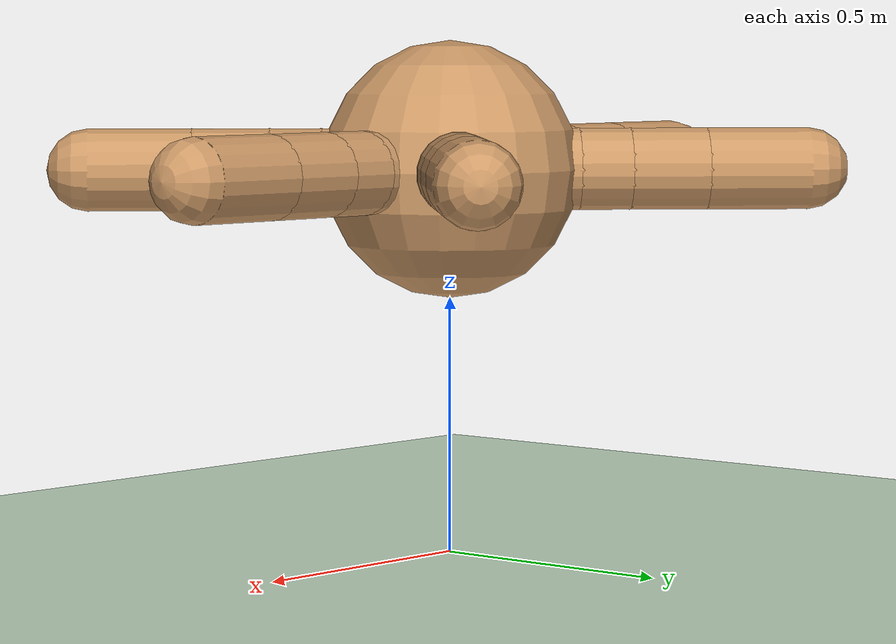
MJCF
<mujoco model="hexapod3dofmoveforward">
  <compiler angle="degree" coordinate="local" inertiafromgeom="true" settotalmass="40"/>
  <option integrator="RK4" timestep="0.005"/>
  <default>
    <joint armature="1" damping="1" limited="true"/>
     <geom conaffinity="0" condim="3" density="5.0" friction="1 0.5 0.5" margin="0.01" rgba="0.8 0.6 0.4 1" material="geom"/>
  </default>
    <asset>
        <texture type="skybox" builtin="gradient" rgb1=".1 .12 .15" rgb2="0 0 0" width="100" height="100"/>
        <texture builtin="checker" height="100" name="texplane" rgb1=".1 .1 .1" rgb2=".15 .15 0.15" type="2d" width="100"/>
        <material name="MatPlane" reflectance="0.5" shininess="1" specular="1" texrepeat="50 50" texture="texplane"/>
        <texture builtin="flat" height="1278" mark="cross" markrgb="1 1 1" name="texgeom" random="0.01" rgb1="0.8 0.6 0.4" rgb2="0.8 0.6 0.4" type="cube" width="127"/>
        <material name="geom" texture="texgeom" texuniform="true"/>
    </asset>
  <worldbody>
    <light cutoff="100" diffuse="1 1 1" dir="-0 0 -1.3" directional="true" exponent="1" pos="0 0 1.3" specular=".1 .1 .1"/>
    <geom conaffinity="1" condim="3" material="MatPlane" name="floor" pos="0 0 0" rgba="0.8 0.9 0.8 1" size="40 40 40" type="plane"/>
     <body name="torso" pos="0 0 0.75">
        <geom name="torso_geom" pos="0 0 0" size="0.25" type="sphere"/>
        <joint armature="0" damping="0" limited="false" margin="0.01" name="root" pos="0 0 0" type="free"/>

   <!-- Back left leg -->
      <body name="back_left_leg" pos="0 0 0">
        <geom fromto="0 0 0 0.177 0.177 0" name="aux_1_geom" size="0.08" type="capsule" />
        <body name="aux_11" pos="0.177 0.177 0">
          <joint axis="0 0 1" name="hip_1" pos="0 0 0" range="-30 30" type="hinge"/>
          <geom fromto="0 0 0 0.071 0.071 0" name="back_left_leg_geom" size="0.08" type="capsule"/>
          <body name="aux_12" pos="0.071 0.071 0">
            <joint axis="-1 1 0" name="ankle_1" pos="0 0 0" range="30 70" type="hinge"/>
            <geom fromto="0 0 0 0.106 0.106 0" name="back_left_ankle_geom" size="0.08" type="capsule" />
            <body name="aux_13" pos="0.106 0.106 0">
              <joint axis="-1 1 0" name="ankle_1_1" pos="0 0 0" range="30 70" type="hinge"/>
              <geom fromto="0 0 0 0.141 0.141 0" name="back_left_ankle_geom_2" size="0.08" type="capsule" />
            </body>
          </body>
        </body>
      </body>

       <!-- Back right leg -->
    <body name="back_right_leg" pos="0 0 0">
      <geom fromto="0 0 0 -0.177 0.177 0" name="aux_2_geom" size="0.08" type="capsule"/>
      <body name="aux_21" pos="-0.177 0.177 0">
        <joint axis="0 0 1" name="hip_2" pos="0 0 0" range="-30 30" type="hinge"/>
        <geom fromto="0 0 0 -0.071 0.071 0" name="back_right_leg_geom" size="0.08" type="capsule" />
        <body name="aux_22" pos="-0.071 0.071 0">
          <joint axis="1 1 0" name="ankle_2" pos="0 0 0" range="-70 -30" type="hinge"/>
          <geom fromto="0 0 0 -0.106 0.106 0" name="back_right_ankle_geom" size="0.08" type="capsule" />
           <body name="aux_23" pos="-0.106 0.106 0">
          <joint axis="1 1 0" name="ankle_2_1" pos="0 0 0" range="-70 -30" type="hinge"/>
          <geom fromto="0 0 0 -0.141 0.141 0" name="back_right_ankle_geom_2" size="0.08" type="capsule" />
        </body>
        </body>
      </body>
    </body>

     <!-- Middle left leg -->
    <body name="middle_left_leg" pos="0 0 0">
      <geom fromto="0 0 0 0.25 0 0" name="aux_4_geom" size="0.08" type="capsule"/>
      <body name="aux_41" pos="0.25 0 0">
        <joint axis="0 0 1" name="hip_4" pos="0 0 0" range="-30 30" type="hinge"/>
        <geom fromto="0 0 0 0.1 0 0" name="middle_left_leg_geom" size="0.08" type="capsule"/>
        <body name="aux_42" pos="0.1 0 0">
          <joint axis="0 1 0" name="ankle_4" pos="0 0 0" range="30 70" type="hinge"/>
          <geom fromto="0 0 0 0.15 0 0" name="middle_left_ankle_geom" size="0.08" type="capsule" />
           <body name="aux_43" pos="0.15 0 0">
          <joint axis="0 1 0" name="ankle_4_1" pos="0 0 0" range="30 70" type="hinge"/>
          <geom fromto="0 0 0 0.20 0 0" name="middle_left_ankle_geom_2" size="0.08" type="capsule"/>
        </body>
        </body>
      </body>
    </body>

    <!-- Middle right leg -->
    <body name="middle_right_leg" pos="0 0 0">
      <geom fromto="0 0 0 -0.25 0 0" name="aux_3_geom" size="0.08" type="capsule"/>
      <body name="aux_31" pos="-0.25 0 0">
        <joint axis="0 0 1" name="hip_3" pos="0 0 0" range="-30 30" type="hinge"/>
        <geom fromto="0 0 0 -0.1 0 0" name="middle_right_leg_geom" size="0.08" type="capsule"/>
        <body name="aux_32" pos="-0.1 0 0">
          <joint axis="0 1 0" name="ankle_3" pos="0 0 0" range="-70 -30" type="hinge"/>
          <geom fromto="0 0 0 -0.15 0 0" name="middle_right_ankle_geom" size="0.08" type="capsule"/>
          <body name="aux_33" pos="-0.15 0 0">
          <joint axis="0 1 0" name="ankle_3_1" pos="0 0 0" range="-70 -30" type="hinge"/>
          <geom fromto="0 0 0 -0.20 0 0" name="middle_right_ankle_geom_2" size="0.08" type="capsule"/>
        </body>
        </body>
      </body>
    </body>

    <!-- Front left leg -->
    <body name="front_left_leg" pos="0 0 0">
      <geom fromto="0 0 0 0.177 -0.177 0" name="aux_6_geom" size="0.08" type="capsule"/>
      <body name="aux_61" pos="0.177 -0.177 0">
        <joint axis="0 0 1" name="hip_6" pos="0 0 0" range="-30 30" type="hinge"/>
        <geom fromto="0 0 0 0.071 -0.071 0" name="front_left_leg_geom" size="0.08" type="capsule"/>
        <body name="aux_62" pos="0.071 -0.071 0">
          <joint axis="1 1 0" name="ankle_6" pos="0 0 0" range="30 70" type="hinge"/>
          <geom fromto="0 0 0 0.106 -0.106 0" name="front_left_ankle_geom" size="0.08" type="capsule"/>
           <body name="aux_63" pos="0.106 -0.106 0">
          <joint axis="1 1 0" name="ankle_6_1" pos="0 0 0" range="30 70" type="hinge"/>
          <geom fromto="0 0 0 0.141 -0.141 0" name="front_left_ankle_geom_2" size="0.08" type="capsule"/>
        </body>
        </body>
      </body>
    </body>
    <!-- Front right leg -->
    <body name="front_right_leg" pos="0 0 0">
      <geom fromto="0 0 0 -0.177 -0.177 0" name="aux_5_geom" size="0.08" type="capsule"/>
      <body name="aux_51" pos="-0.177 -0.177 0">
        <joint axis="0 0 1" name="hip_5" pos="0 0 0" range="-30 30" type="hinge"/>
        <geom fromto="0 0 0 -0.071 -0.071 0" name="front_right_leg_geom" size="0.08" type="capsule"/>
        <body name="aux_52" pos="-0.071 -0.071 0">
          <joint axis="-1 1 0" name="ankle_5" pos="0 0 0" range="-70 -30" type="hinge"/>
          <geom fromto="0 0 0 -0.106 -0.106 0" name="front_right_ankle_geom" size="0.08" type="capsule"/>
          <body name="aux_53" pos="-0.106 -0.106 0">
          <joint axis="-1 1 0" name="ankle_5_1" pos="0 0 0" range="-70 -30" type="hinge"/>
          <geom fromto="0 0 0 -0.141 -0.141 0" name="front_right_ankle_geom_2" size="0.08" type="capsule"/>
        </body>
        </body>
      </body>
    </body>
    </body>

  </worldbody>

  <actuator>
    <motor ctrllimited="true" ctrlrange="-1.0 1.0" joint="hip_1" gear="150"/>
    <motor ctrllimited="true" ctrlrange="-1.0 1.0" joint="ankle_1" gear="150"/>
    <motor ctrllimited="true" ctrlrange="-1.0 1.0" joint="ankle_1_1" gear="150"/>

    <motor ctrllimited="true" ctrlrange="-1.0 1.0" joint="hip_2" gear="150"/>
    <motor ctrllimited="true" ctrlrange="-1.0 1.0" joint="ankle_2" gear="150"/>
    <motor ctrllimited="true" ctrlrange="-1.0 1.0" joint="ankle_2_1" gear="150"/>

    <motor ctrllimited="true" ctrlrange="-1.0 1.0" joint="hip_3" gear="150"/>
    <motor ctrllimited="true" ctrlrange="-1.0 1.0" joint="ankle_3" gear="150"/>
    <motor ctrllimited="true" ctrlrange="-1.0 1.0" joint="ankle_3_1" gear="150"/>

    <motor ctrllimited="true" ctrlrange="-1.0 1.0" joint="hip_4" gear="150"/>
    <motor ctrllimited="true" ctrlrange="-1.0 1.0" joint="ankle_4" gear="150"/>
    <motor ctrllimited="true" ctrlrange="-1.0 1.0" joint="ankle_4_1" gear="150"/>

    <motor ctrllimited="true" ctrlrange="-1.0 1.0" joint="hip_5" gear="150"/>
    <motor ctrllimited="true" ctrlrange="-1.0 1.0" joint="ankle_5" gear="150"/>
    <motor ctrllimited="true" ctrlrange="-1.0 1.0" joint="ankle_5_1" gear="150"/>

    <motor ctrllimited="true" ctrlrange="-1.0 1.0" joint="hip_6" gear="150"/>
    <motor ctrllimited="true" ctrlrange="-1.0 1.0" joint="ankle_6" gear="150"/>
    <motor ctrllimited="true" ctrlrange="-1.0 1.0" joint="ankle_6_1" gear="150"/>

  </actuator>

</mujoco>
